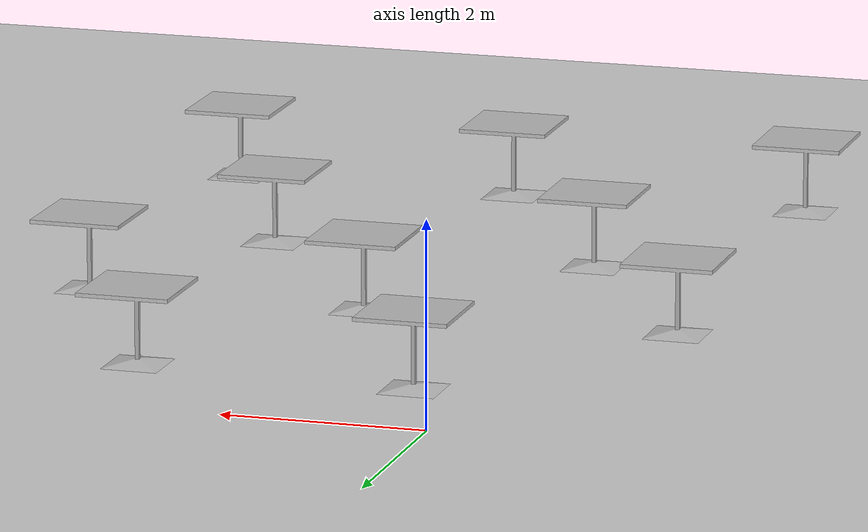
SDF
<sdf version="1.7">
 <world name="default">
  <light name="sun" type="directional">
   <pose>0 0 10 0 -0 0</pose>
   <diffuse>0.8 0.8 0.8 1</diffuse>
   <specular>0.2 0.2 0.2 1</specular>
   <attenuation>
    <range>1000</range>
    <constant>0.9</constant>
    <linear>0.01</linear>
    <quadratic>0.001</quadratic>
   </attenuation>
   <direction>-0.5 0.1 -0.9</direction>
   <spot><inner_angle>0</inner_angle><outer_angle>0</outer_angle><falloff>0</falloff></spot>
  </light>
  <model name="ground_plane">
   <static>1</static>
   <link name="link">
    <collision name="collision">
     <geometry><plane><normal>0 0 1</normal><size>100 100</size></plane></geometry>
     <surface>
      <contact><collide_bitmask>65535</collide_bitmask></contact>
      <friction><ode><mu>100</mu><mu2>50</mu2></ode></friction>
     </surface>
    </collision>
    <visual name="visual">
     <cast_shadows>0</cast_shadows>
     <geometry><plane><normal>0 0 1</normal><size>100 100</size></plane></geometry>
     <material>
      <script><uri>file://media/materials/scripts/gazebo.material</uri><name>Gazebo/Grey</name></script>
     </material>
    </visual>
   </link>
  </model>
  <gravity>0 0 -9.8</gravity>
  <magnetic_field>6e-06 2.3e-05 -4.2e-05</magnetic_field>
  <atmosphere type="adiabatic"/>
  <physics type="ode">
   <max_step_size>0.001</max_step_size>
   <real_time_factor>1</real_time_factor>
   <real_time_update_rate>1000</real_time_update_rate>
  </physics>
  <scene><ambient>0.4 0.4 0.4 1</ambient><background>0.7 0.7 0.7 1</background><shadows>1</shadows></scene>
  <audio><device>default</device></audio>
  <spherical_coordinates>
   <surface_model>EARTH_WGS84</surface_model>
   <latitude_deg>0</latitude_deg>
   <longitude_deg>0</longitude_deg>
   <elevation>0</elevation>
   <heading_deg>0</heading_deg>
  </spherical_coordinates>
  <model name="cafe_table">
   <static>1</static>
   <link name="link">
    <collision name="surface">
     <pose>0 0 0.755 0 -0 0</pose>
     <geometry><box><size>0.913 0.913 0.04</size></box></geometry>
    </collision>
    <collision name="column">
     <pose>0 0 0.37 0 -0 0</pose>
     <geometry><box><size>0.042 0.042 0.74</size></box></geometry>
    </collision>
    <collision name="base">
     <pose>0 0 0.02 0 -0 0</pose>
     <geometry><box><size>0.56 0.56 0.04</size></box></geometry>
    </collision>
    <visual name="visual">
     <geometry><mesh><uri>model://cafe_table/meshes/cafe_table.dae</uri></mesh></geometry>
    </visual>
   </link>
   <pose>0.542732 -1.37678 0 0 -0 0</pose>
  </model>
  <model name="cafe_table_0">
   <static>1</static>
   <link name="link">
    <collision name="surface">
     <pose>0 0 0.755 0 -0 0</pose>
     <geometry><box><size>0.913 0.913 0.04</size></box></geometry>
    </collision>
    <collision name="column">
     <pose>0 0 0.37 0 -0 0</pose>
     <geometry><box><size>0.042 0.042 0.74</size></box></geometry>
    </collision>
    <collision name="base">
     <pose>0 0 0.02 0 -0 0</pose>
     <geometry><box><size>0.56 0.56 0.04</size></box></geometry>
    </collision>
    <visual name="visual">
     <geometry><mesh><uri>model://cafe_table/meshes/cafe_table.dae</uri></mesh></geometry>
    </visual>
   </link>
   <pose>3.31934 -1.5039 0 0 -0 0</pose>
  </model>
  <model name="cafe_table_1">
   <static>1</static>
   <link name="link">
    <collision name="surface">
     <pose>0 0 0.755 0 -0 0</pose>
     <geometry><box><size>0.913 0.913 0.04</size></box></geometry>
    </collision>
    <collision name="column">
     <pose>0 0 0.37 0 -0 0</pose>
     <geometry><box><size>0.042 0.042 0.74</size></box></geometry>
    </collision>
    <collision name="base">
     <pose>0 0 0.02 0 -0 0</pose>
     <geometry><box><size>0.56 0.56 0.04</size></box></geometry>
    </collision>
    <visual name="visual">
     <geometry><mesh><uri>model://cafe_table/meshes/cafe_table.dae</uri></mesh></geometry>
    </visual>
   </link>
   <pose>1.86397 -4.05636 0 0 -0 0</pose>
  </model>
  <model name="cafe_table_2">
   <static>1</static>
   <link name="link">
    <collision name="surface">
     <pose>0 0 0.755 0 -0 0</pose>
     <geometry><box><size>0.913 0.913 0.04</size></box></geometry>
    </collision>
    <collision name="column">
     <pose>0 0 0.37 0 -0 0</pose>
     <geometry><box><size>0.042 0.042 0.74</size></box></geometry>
    </collision>
    <collision name="base">
     <pose>0 0 0.02 0 -0 0</pose>
     <geometry><box><size>0.56 0.56 0.04</size></box></geometry>
    </collision>
    <visual name="visual">
     <geometry><mesh><uri>model://cafe_table/meshes/cafe_table.dae</uri></mesh></geometry>
    </visual>
   </link>
   <pose>4.70136 -4.08406 0 0 -0 0</pose>
  </model>
  <model name="cafe_table_3">
   <static>1</static>
   <link name="link">
    <collision name="surface">
     <pose>0 0 0.755 0 -0 0</pose>
     <geometry><box><size>0.913 0.913 0.04</size></box></geometry>
    </collision>
    <collision name="column">
     <pose>0 0 0.37 0 -0 0</pose>
     <geometry><box><size>0.042 0.042 0.74</size></box></geometry>
    </collision>
    <collision name="base">
     <pose>0 0 0.02 0 -0 0</pose>
     <geometry><box><size>0.56 0.56 0.04</size></box></geometry>
    </collision>
    <visual name="visual">
     <geometry><mesh><uri>model://cafe_table/meshes/cafe_table.dae</uri></mesh></geometry>
    </visual>
   </link>
   <pose>-1.30944 -4.02819 0 0 -0 0</pose>
  </model>
  <model name="cafe_table_4">
   <static>1</static>
   <link name="link">
    <collision name="surface">
     <pose>0 0 0.755 0 -0 0</pose>
     <geometry><box><size>0.913 0.913 0.04</size></box></geometry>
    </collision>
    <collision name="column">
     <pose>0 0 0.37 0 -0 0</pose>
     <geometry><box><size>0.042 0.042 0.74</size></box></geometry>
    </collision>
    <collision name="base">
     <pose>0 0 0.02 0 -0 0</pose>
     <geometry><box><size>0.56 0.56 0.04</size></box></geometry>
    </collision>
    <visual name="visual">
     <geometry><mesh><uri>model://cafe_table/meshes/cafe_table.dae</uri></mesh></geometry>
    </visual>
   </link>
   <pose>3.53458 -6.40516 0 0 -0 0</pose>
  </model>
  <model name="cafe_table_5">
   <static>1</static>
   <link name="link">
    <collision name="surface">
     <pose>0 0 0.755 0 -0 0</pose>
     <geometry><box><size>0.913 0.913 0.04</size></box></geometry>
    </collision>
    <collision name="column">
     <pose>0 0 0.37 0 -0 0</pose>
     <geometry><box><size>0.042 0.042 0.74</size></box></geometry>
    </collision>
    <collision name="base">
     <pose>0 0 0.02 0 -0 0</pose>
     <geometry><box><size>0.56 0.56 0.04</size></box></geometry>
    </collision>
    <visual name="visual">
     <geometry><mesh><uri>model://cafe_table/meshes/cafe_table.dae</uri></mesh></geometry>
    </visual>
   </link>
   <pose>0.170449 -6.33495 0 0 -0 0</pose>
  </model>
  <model name="cafe_table_6">
   <static>1</static>
   <link name="link">
    <collision name="surface">
     <pose>0 0 0.755 0 -0 0</pose>
     <geometry><box><size>0.913 0.913 0.04</size></box></geometry>
    </collision>
    <collision name="column">
     <pose>0 0 0.37 0 -0 0</pose>
     <geometry><box><size>0.042 0.042 0.74</size></box></geometry>
    </collision>
    <collision name="base">
     <pose>0 0 0.02 0 -0 0</pose>
     <geometry><box><size>0.56 0.56 0.04</size></box></geometry>
    </collision>
    <visual name="visual">
     <geometry><mesh><uri>model://cafe_table/meshes/cafe_table.dae</uri></mesh></geometry>
    </visual>
   </link>
   <pose>4.76057 -9.03028 0 0 -0 0</pose>
  </model>
  <model name="cafe_table_7">
   <static>1</static>
   <link name="link">
    <collision name="surface">
     <pose>0 0 0.755 0 -0 0</pose>
     <geometry><box><size>0.913 0.913 0.04</size></box></geometry>
    </collision>
    <collision name="column">
     <pose>0 0 0.37 0 -0 0</pose>
     <geometry><box><size>0.042 0.042 0.74</size></box></geometry>
    </collision>
    <collision name="base">
     <pose>0 0 0.02 0 -0 0</pose>
     <geometry><box><size>0.56 0.56 0.04</size></box></geometry>
    </collision>
    <visual name="visual">
     <geometry><mesh><uri>model://cafe_table/meshes/cafe_table.dae</uri></mesh></geometry>
    </visual>
   </link>
   <pose>1.77754 -9.0106 0 0 -0 0</pose>
  </model>
  <model name="cafe_table_8">
   <static>1</static>
   <link name="link">
    <collision name="surface">
     <pose>0 0 0.755 0 -0 0</pose>
     <geometry><box><size>0.913 0.913 0.04</size></box></geometry>
    </collision>
    <collision name="column">
     <pose>0 0 0.37 0 -0 0</pose>
     <geometry><box><size>0.042 0.042 0.74</size></box></geometry>
    </collision>
    <collision name="base">
     <pose>0 0 0.02 0 -0 0</pose>
     <geometry><box><size>0.56 0.56 0.04</size></box></geometry>
    </collision>
    <visual name="visual">
     <geometry><mesh><uri>model://cafe_table/meshes/cafe_table.dae</uri></mesh></geometry>
    </visual>
   </link>
   <pose>-1.29559 -9.16463 0 0 -0 0</pose>
  </model>
 </world>
</sdf>
